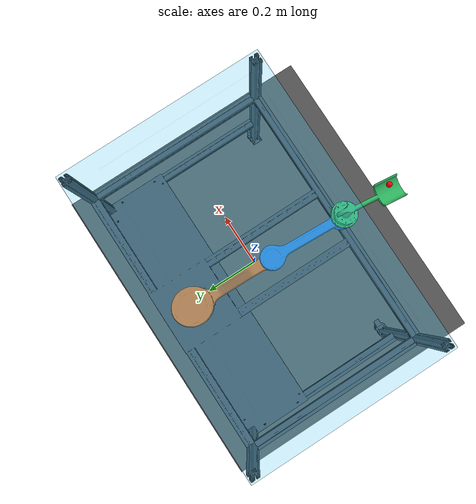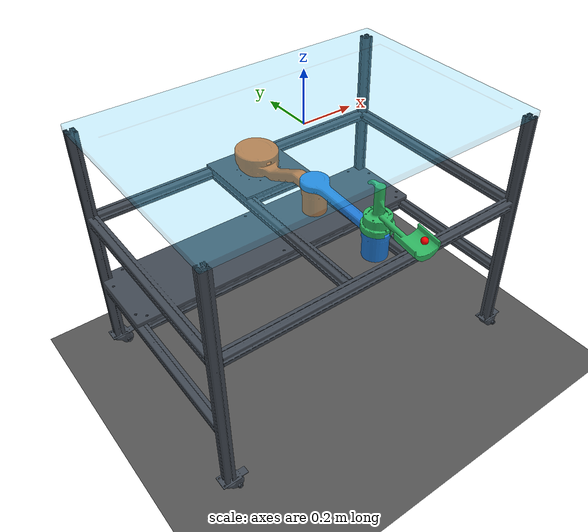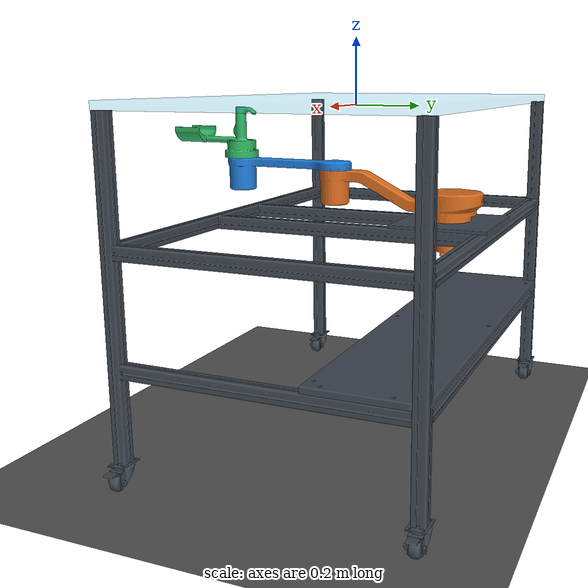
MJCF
<?xml version="1.0" encoding="UTF-8"?>
<mujoco model="planar_rehab_robot">
  <compiler angle="radian" meshdir="meshes" autolimits="true" coordinate="local"/>
  <option gravity="0 0 -9.81" integrator="implicitfast" timestep="0.002"/>
  <size njmax="100" nconmax="100"/>
  <visual>
    <global offwidth="1280" offheight="720"/>
    <headlight ambient="0.16 0.16 0.16" diffuse="0.42 0.42 0.42" specular="0.08 0.08 0.08"/>
    <map znear="0.01" zfar="20" fogstart="3" fogend="12"/>
    <rgba haze="0.72 0.78 0.86 1"/>
  </visual>
  <asset>
    <mesh name="base_link_mesh" file="base_link.stl"/>
    <mesh name="link1_mesh" file="link1.stl"/>
    <mesh name="link2_mesh" file="link2.stl"/>
    <mesh name="link3_mesh" file="link3.stl"/>
    <mesh name="display_mesh" file="display.stl"/>
    <texture name="skybox_tex" type="skybox" builtin="gradient"
      rgb1="0.48 0.60 0.76" rgb2="0.92 0.95 1.0" width="512" height="512"/>
    <texture name="ground_tex" type="2d" builtin="checker"
      rgb1="0.035 0.035 0.035" rgb2="0.62 0.62 0.62" width="512" height="512"
      mark="edge" markrgb="0.12 0.12 0.12"/>
    <material name="ground_mat" texture="ground_tex" texrepeat="6 6" reflectance="0.04"/>
    <material name="base_mat" rgba="0.25 0.28 0.32 1"/>
    <material name="link1_mat" rgba="0.85 0.42 0.12 1"/>
    <material name="link2_mat" rgba="0.12 0.48 0.85 1"/>
    <material name="link3_mat" rgba="0.18 0.72 0.38 1"/>
    <material name="display_mat" rgba="0.25 0.80 1.0 0.25"/>
  </asset>
  <worldbody>
    <light name="key_light" pos="1.5 -1.5 3.5" dir="-0.25 0.25 -1"
      directional="true" diffuse="0.48 0.48 0.45" specular="0.12 0.12 0.12"/>
    <light name="fill_light" pos="-2.0 1.5 2.2" dir="0.45 -0.35 -1"
      directional="true" diffuse="0.16 0.20 0.28" specular="0.04 0.04 0.04"/>
    <light name="rim_light" pos="0 0 -0.2" dir="0 0 1"
      directional="true" diffuse="0.06 0.08 0.12" specular="0.02 0.02 0.02"/>
    <geom name="ground_plane" type="plane" pos="0 0 -1.045" size="3 3 0.02"
      material="ground_mat" contype="0" conaffinity="0"/>
    <body name="base_link">
        <inertial pos="0.000278710721 0.0971014385 -0.521168606" mass="30" diaginertia="4.76278023 7.60489063 7.06317086"/>
      <!-- Imported CAD is display geometry. Collision is disabled because the
           base mesh includes the table/frame and overlaps the moving links. -->
      <geom name="base_link_geom" type="mesh" mesh="base_link_mesh" material="base_mat" contype="0" conaffinity="0"/>
      <geom name="display_geom" type="mesh" mesh="display_mesh" material="display_mat" contype="0" conaffinity="0"/>
      <body name="link1" pos="-8.54471886e-17 0.3 -0.34">
        <inertial pos="-0.00533981321 -0.137917299 0.06136547" mass="4" diaginertia="0.112529174 0.029334738 0.102010412"/>
        <joint name="joint1" type="hinge" axis="0 0 1" limited="true" range="-3.14159265 3.14159265" damping="0.05" frictionloss="0.01"/>
        <geom name="link1_geom" type="mesh" mesh="link1_mesh" material="link1_mat" contype="0" conaffinity="0"/>
        <body name="link2" pos="-0.014892257 -0.379708073 0">
        <inertial pos="-0.0111210286 -0.225497878 0.137607541" mass="3" diaginertia="0.0515999048 0.00674458601 0.0516512444"/>
          <joint name="joint2" type="hinge" axis="0 0 1" limited="true" range="-3.14159265 3.14159265" damping="0.05" frictionloss="0.01"/>
          <geom name="link2_geom" type="mesh" mesh="link2_mesh" material="link2_mat" contype="0" conaffinity="0"/>
          <body name="link3" pos="-0.0133246509802806 -0.33973880165511 0">
        <inertial pos="-0.00427750475 -0.038462517 0.210040768" mass="1" diaginertia="0.00978668911 0.00356942998 0.00895507753"/>
            <joint name="joint3" type="hinge" axis="0 0 1" limited="true" range="-3.14159265 3.14159265" damping="0.05" frictionloss="0.01"/>
            <geom name="link3_geom" type="mesh" mesh="link3_mesh" material="link3_mat" contype="0" conaffinity="0"/>
            <!-- CAD-derived interaction point near the distal handle center. -->
            <site name="tool_tip" pos="0 -0.200 0.245" size="0.012" rgba="1 0 0 1"/>
          </body>
        </body>
      </body>
    </body>
  </worldbody>
  <actuator>
    <!-- Control values are target joint angles in radians. -->
    <position name="joint1_target" joint="joint1" kp="80" kv="8" ctrlrange="-3.14159265 3.14159265" ctrllimited="true"/>
    <position name="joint2_target" joint="joint2" kp="80" kv="8" ctrlrange="-3.14159265 3.14159265" ctrllimited="true"/>
    <position name="joint3_target" joint="joint3" kp="80" kv="8" ctrlrange="-3.14159265 3.14159265" ctrllimited="true"/>
  </actuator>
  <keyframe>
    <!-- Zero pose: all three links are collinear. -->
    <key name="zero" qpos="0 0 0" ctrl="0 0 0"/>
  </keyframe>
</mujoco>
